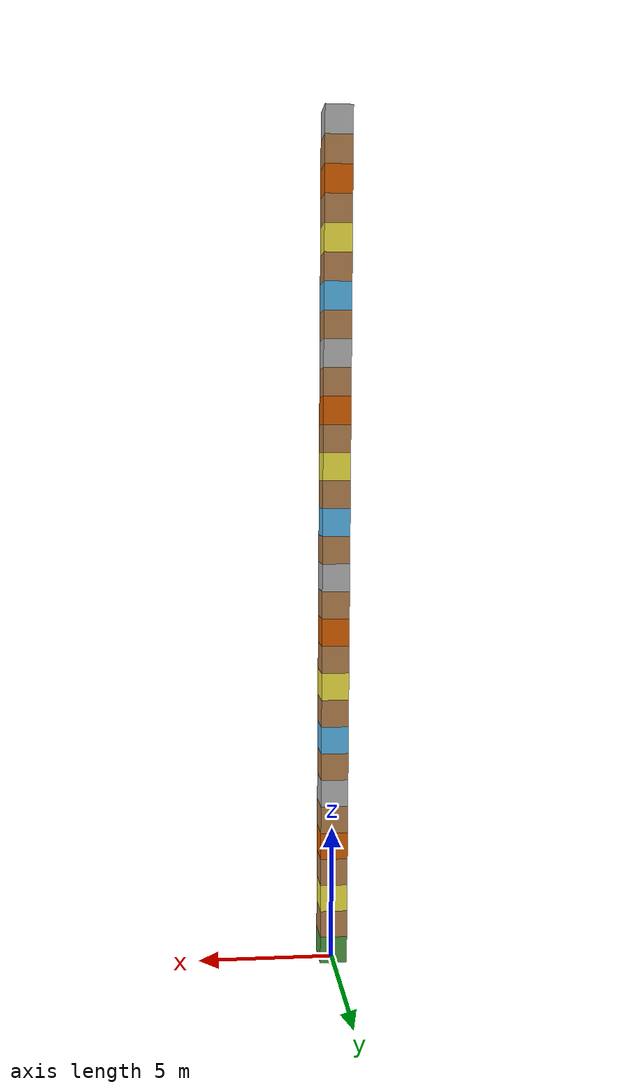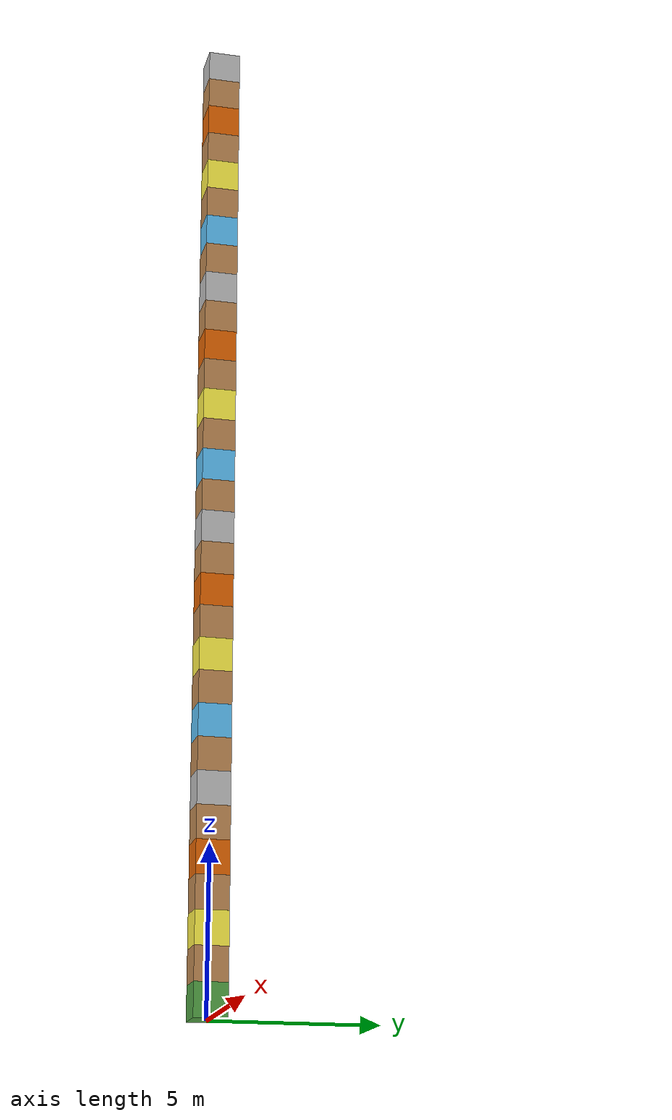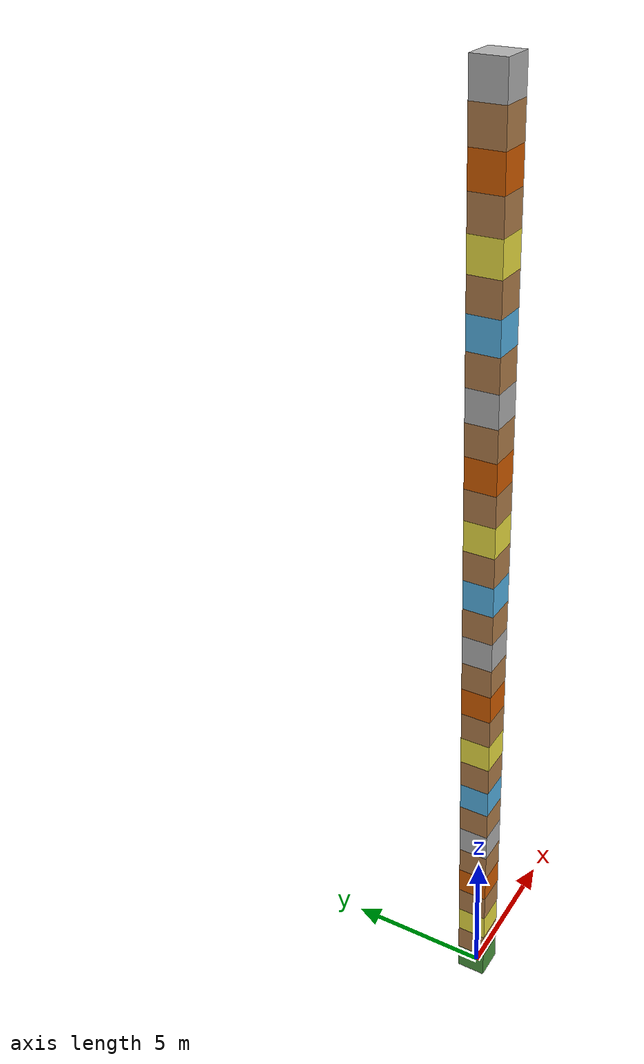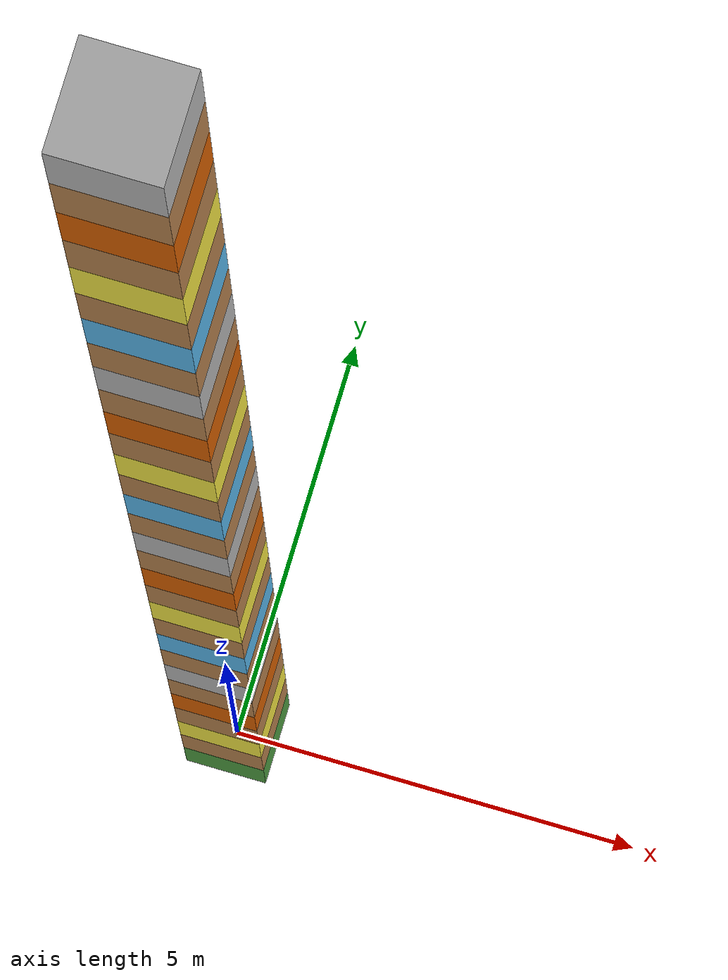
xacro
<?xml version="1.0"?>
<robot name="continuous_pendulum"
       xmlns:xi="http://www.w3.org/2001/XInclude"
       xmlns:gazebo="http://playerstage.sourceforge.net/gazebo/xmlschema/#gz"
       xmlns:model="http://playerstage.sourceforge.net/gazebo/xmlschema/#model"
       xmlns:sensor="http://playerstage.sourceforge.net/gazebo/xmlschema/#sensor"
       xmlns:body="http://playerstage.sourceforge.net/gazebo/xmlschema/#body"
       xmlns:geom="http://playerstage.sourceforge.net/gazebo/xmlschema/#geom"
       xmlns:joint="http://playerstage.sourceforge.net/gazebo/xmlschema/#joint"
       xmlns:interface="http://playerstage.sourceforge.net/gazebo/xmlschema/#interface"
       xmlns:rendering="http://playerstage.sourceforge.net/gazebo/xmlschema/#rendering"
       xmlns:renderable="http://playerstage.sourceforge.net/gazebo/xmlschema/#renderable"
       xmlns:controller="http://playerstage.sourceforge.net/gazebo/xmlschema/#controller"
       xmlns:xacro="http://ros.org/wiki/xacro"
       xmlns:physics="http://playerstage.sourceforge.net/gazebo/xmlschema/#physics">

  <xacro:property name="moi" value="0.0001"/>
  <xacro:property name="mass" value="1.0"/>
  <xacro:property name="kp" value="1000000001.0"/>
  <xacro:property name="kd" value="1000000000.0"/>

  <link name="world"/>
  <xacro:macro name="one_link" params="link_name parent *origin material">
    <joint name="${link_name}_joint" type="floating" >
      <insert_block name="origin"/>
      <parent link="${parent}" />
      <child link="${link_name}" />
      <dynamics damping="0.0" />
    </joint>
    <link name="${link_name}">
      <inertial >
        <mass value="${mass}" />
        <origin xyz="0 0 0" />
        <inertia  ixx="${moi}" ixy="0.0"  ixz="0.0"  iyy="${moi}"  iyz="0.0"  izz="${moi}" />
      </inertial>
      <visual >
        <origin xyz="0 0 0.5" rpy="0 0 0" />
        <geometry>
          <box size="1 1 1" />
        </geometry>
      </visual>
      <collision >
        <origin xyz="0 0 0.5" rpy="0 0 0" />
        <geometry>
          <box size="1 1 1" />
        </geometry>
      </collision>
    </link>
    <gazebo reference="${link_name}">
      <kp>${kp}</kp>
      <kd>${kd}</kd>
      <material>${material}</material>
      <turnGravityOff>false</turnGravityOff>
      <selfCollide>true</selfCollide>
    </gazebo>
  </xacro:macro>

  <xacro:one_link link_name="link1" parent="world" material="Gazebo/GrassFloor">
    <origin xyz="0 0 0" rpy="0 0 0"/>
  </xacro:one_link>
  <xacro:one_link link_name="link2" parent="world" material="Gazebo/LightWood">
    <origin xyz="0 0 1" rpy="0 0 0"/>
  </xacro:one_link>
  <xacro:one_link link_name="link3" parent="world" material="Gazebo/BumpyMetal">
    <origin xyz="0 0 2" rpy="0 0 0"/>
  </xacro:one_link>
  <xacro:one_link link_name="link4" parent="world" material="Gazebo/LightWood">
    <origin xyz="0 0 3" rpy="0 0 0"/>
  </xacro:one_link>
  <xacro:one_link link_name="link5" parent="world" material="Gazebo/BumpyMetal">
    <origin xyz="0 0 4" rpy="0 0 0"/>
  </xacro:one_link>
  <xacro:one_link link_name="link6" parent="world" material="Gazebo/LightWood">
    <origin xyz="0 0 5" rpy="0 0 0"/>
  </xacro:one_link>
  <xacro:one_link link_name="link7" parent="world" material="Gazebo/BumpyMetal">
    <origin xyz="0 0 6" rpy="0 0 0"/>
  </xacro:one_link>
  <xacro:one_link link_name="link8" parent="world" material="Gazebo/LightWood">
    <origin xyz="0 0 7" rpy="0 0 0"/>
  </xacro:one_link>
  <xacro:one_link link_name="link9" parent="world" material="Gazebo/BumpyMetal">
    <origin xyz="0 0 8" rpy="0 0 0"/>
  </xacro:one_link>
  <xacro:one_link link_name="link10" parent="world" material="Gazebo/LightWood">
    <origin xyz="0 0 9" rpy="0 0 0"/>
  </xacro:one_link>
  <xacro:one_link link_name="link11" parent="world" material="Gazebo/BumpyMetal">
    <origin xyz="0 0 10" rpy="0 0 0"/>
  </xacro:one_link>
  <xacro:one_link link_name="link12" parent="world" material="Gazebo/LightWood">
    <origin xyz="0 0 11" rpy="0 0 0"/>
  </xacro:one_link>
  <xacro:one_link link_name="link13" parent="world" material="Gazebo/BumpyMetal">
    <origin xyz="0 0 12" rpy="0 0 0"/>
  </xacro:one_link>
  <xacro:one_link link_name="link14" parent="world" material="Gazebo/LightWood">
    <origin xyz="0 0 13" rpy="0 0 0"/>
  </xacro:one_link>
  <xacro:one_link link_name="link15" parent="world" material="Gazebo/BumpyMetal">
    <origin xyz="0 0 14" rpy="0 0 0"/>
  </xacro:one_link>
  <xacro:one_link link_name="link16" parent="world" material="Gazebo/LightWood">
    <origin xyz="0 0 15" rpy="0 0 0"/>
  </xacro:one_link>
  <xacro:one_link link_name="link17" parent="world" material="Gazebo/BumpyMetal">
    <origin xyz="0 0 16" rpy="0 0 0"/>
  </xacro:one_link>
  <xacro:one_link link_name="link18" parent="world" material="Gazebo/LightWood">
    <origin xyz="0 0 17" rpy="0 0 0"/>
  </xacro:one_link>
  <xacro:one_link link_name="link19" parent="world" material="Gazebo/BumpyMetal">
    <origin xyz="0 0 18" rpy="0 0 0"/>
  </xacro:one_link>
  <xacro:one_link link_name="link20" parent="world" material="Gazebo/LightWood">
    <origin xyz="0 0 19" rpy="0 0 0"/>
  </xacro:one_link>
  <xacro:one_link link_name="link21" parent="world" material="Gazebo/BumpyMetal">
    <origin xyz="0 0 20" rpy="0 0 0"/>
  </xacro:one_link>
  <xacro:one_link link_name="link22" parent="world" material="Gazebo/LightWood">
    <origin xyz="0 0 21" rpy="0 0 0"/>
  </xacro:one_link>
  <xacro:one_link link_name="link23" parent="world" material="Gazebo/BumpyMetal">
    <origin xyz="0 0 22" rpy="0 0 0"/>
  </xacro:one_link>
  <xacro:one_link link_name="link24" parent="world" material="Gazebo/LightWood">
    <origin xyz="0 0 23" rpy="0 0 0"/>
  </xacro:one_link>
  <xacro:one_link link_name="link25" parent="world" material="Gazebo/BumpyMetal">
    <origin xyz="0 0 24" rpy="0 0 0"/>
  </xacro:one_link>
  <xacro:one_link link_name="link26" parent="world" material="Gazebo/LightWood">
    <origin xyz="0 0 25" rpy="0 0 0"/>
  </xacro:one_link>
  <xacro:one_link link_name="link27" parent="world" material="Gazebo/BumpyMetal">
    <origin xyz="0 0 26" rpy="0 0 0"/>
  </xacro:one_link>
  <xacro:one_link link_name="link28" parent="world" material="Gazebo/LightWood">
    <origin xyz="0 0 27" rpy="0 0 0"/>
  </xacro:one_link>
  <xacro:one_link link_name="link29" parent="world" material="Gazebo/BumpyMetal">
    <origin xyz="0 0 28" rpy="0 0 0"/>
  </xacro:one_link>
  <xacro:one_link link_name="link30" parent="world" material="Gazebo/LightWood">
    <origin xyz="0 0 29" rpy="0 0 0"/>
  </xacro:one_link>
  <xacro:one_link link_name="link31" parent="world" material="Gazebo/BumpyMetal">
    <origin xyz="0 0 30" rpy="0 0 0"/>
  </xacro:one_link>

</robot>
